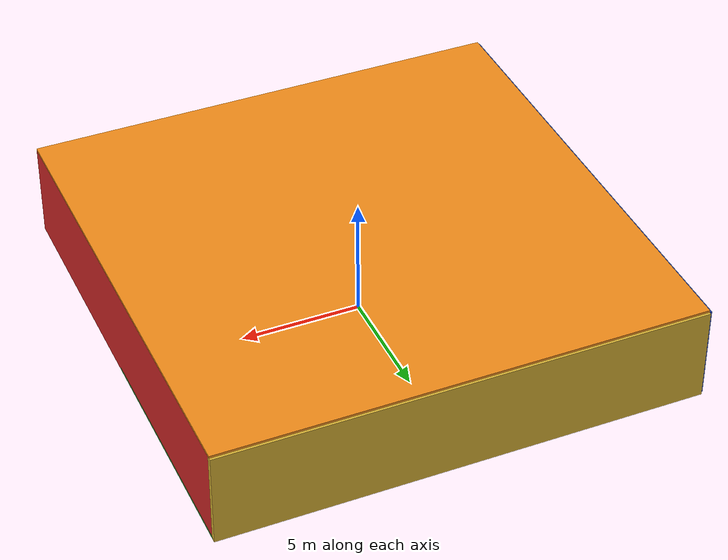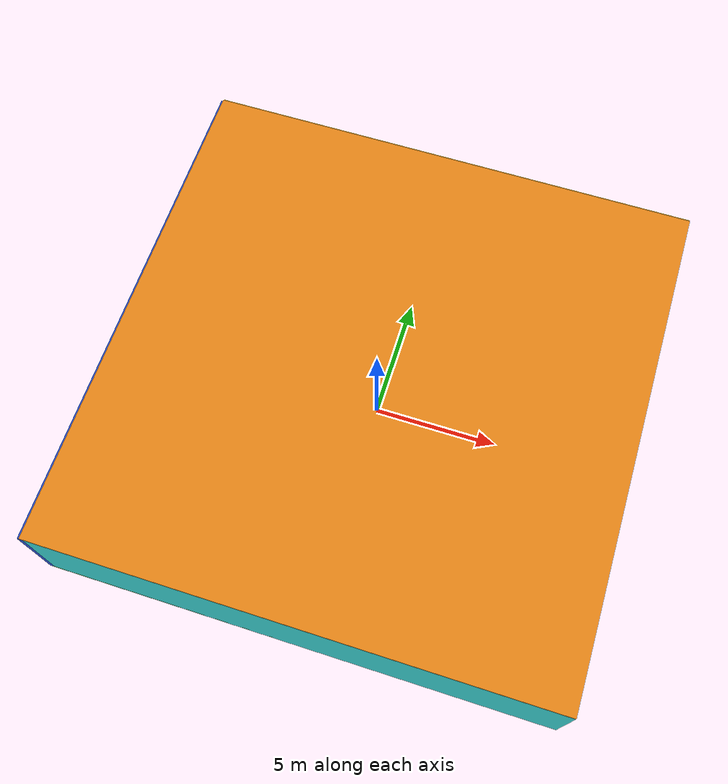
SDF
<sdf version="1.4">
 <world name="default">
  <physics type="ode">
   <max_step_size>0.001</max_step_size>
   <real_time_factor>1</real_time_factor>
   <real_time_update_rate>1000</real_time_update_rate>
   <gravity>0 0 -9.8</gravity>
  </physics>
  <scene><ambient>0.4 0.4 0.4 1</ambient><background>0.7 0.7 0.7 1</background><shadows>1</shadows></scene>
  <model name="Surrounding">
   <static>1</static>
   <link name="Ceiling">
    <collision name="Ceiling_Collision"><geometry><box><size>20 20 0.1</size></box></geometry></collision>
    <visual name="Ceiling_Visual">
     <geometry><box><size>20 20 0.1</size></box></geometry>
     <material>
      <script><uri>file://media/materials/scripts/gazebo.material</uri><name>Gazebo/Orange</name></script>
     </material>
    </visual>
    <pose>0 0 4.05 0 0 0</pose>
   </link>
   <link name="Wall_South">
    <collision name="Wall_South_Collision">
     <geometry><box><size>20 0 4</size></box></geometry>
     <pose>0 0 2 0 -0 0</pose>
    </collision>
    <visual name="Wall_South_Visual">
     <pose>0 0 2 0 -0 0</pose>
     <geometry><box><size>20 0 4</size></box></geometry>
     <material>
      <script><uri>file://media/materials/scripts/gazebo.material</uri><name>Gazebo/Turquoise</name></script>
     </material>
    </visual>
    <velocity_decay><linear>0</linear><angular>0</angular></velocity_decay>
    <pose>0 -10 0 0 -0 0</pose>
   </link>
   <link name="Wall_East">
    <collision name="Wall_21_Collision">
     <geometry><box><size>20 0 4</size></box></geometry>
     <pose>0 0 2 0 -0 0</pose>
    </collision>
    <visual name="Wall_21_Visual">
     <pose>0 0 2 0 -0 0</pose>
     <geometry><box><size>20 0 4</size></box></geometry>
     <material>
      <script><uri>file://media/materials/scripts/gazebo.material</uri><name>Gazebo/RedBright</name></script>
     </material>
    </visual>
    <velocity_decay><linear>0</linear><angular>0</angular></velocity_decay>
    <pose>10 0 0 0 -0 1.5708</pose>
   </link>
   <link name="Wall_North">
    <collision name="Wall_22_Collision">
     <geometry><box><size>20 0.2 4</size></box></geometry>
     <pose>0 0 2 0 -0 0</pose>
    </collision>
    <visual name="Wall_22_Visual">
     <pose>0 0 2 0 -0 0</pose>
     <geometry><box><size>20 0.2 4</size></box></geometry>
     <material>
      <script><uri>file://media/materials/scripts/gazebo.material</uri><name>Gazebo/Gold</name></script>
     </material>
    </visual>
    <velocity_decay><linear>0</linear><angular>0</angular></velocity_decay>
    <pose>0 10 0 0 -0 0</pose>
   </link>
   <link name="Wall_West">
    <collision name="Wall_23_Collision">
     <geometry><box><size>20 0.2 4</size></box></geometry>
     <pose>0 0 2 0 -0 0</pose>
    </collision>
    <visual name="Wall_23_Visual">
     <pose>0 0 2 0 -0 0</pose>
     <geometry><box><size>20 0.2 4</size></box></geometry>
     <material>
      <script><uri>file://media/materials/scripts/gazebo.material</uri><name>Gazebo/Blue</name></script>
     </material>
    </visual>
    <velocity_decay><linear>0</linear><angular>0</angular></velocity_decay>
    <pose>-10 0 0 0 0 -1.5708</pose>
   </link>
   <link name="Ground_link">
    <collision name="collision">
     <pose>0 0 .05 0 -0 0</pose>
     <geometry><box><size>20 20 0.1</size></box></geometry>
    </collision>
    <visual name="visual">
     <pose>0 0 .05 0 -0 0</pose>
     <geometry><box><size>20 20 0.1</size></box></geometry>
     <material>
      <script><uri>file://media/materials/scripts/gazebo.material</uri><name>Gazebo/Green</name></script>
     </material>
    </visual>
   </link>
   <static>1</static>
  </model>
  <spherical_coordinates>
   <surface_model>EARTH_WGS84</surface_model>
   <latitude_deg>0</latitude_deg>
   <longitude_deg>0</longitude_deg>
   <elevation>0</elevation>
   <heading_deg>0</heading_deg>
  </spherical_coordinates>
  <light name="lightball_0" type="diffuse">
   <diffuse>0.8 0.8 0.8 1</diffuse>
   <specular>0.2 0.2 0.2 1</specular>
   <attenuation>
    <range>100</range>
    <constant>0.7</constant>
    <linear>0.01</linear>
    <quadratic>0.001</quadratic>
   </attenuation>
   <direction>-0.5 0.1 -0.9</direction>
   <pose>-7.96460892918 7.62872080389 2.3290602367 0 0 0</pose>
  </light>
  <light name="lightball_1" type="diffuse">
   <diffuse>0.8 0.8 0.8 1</diffuse>
   <specular>0.2 0.2 0.2 1</specular>
   <attenuation>
    <range>100</range>
    <constant>0.7</constant>
    <linear>0.01</linear>
    <quadratic>0.001</quadratic>
   </attenuation>
   <direction>-0.5 0.1 -0.9</direction>
   <pose>2.71556479208 7.51996873715 3.29277295874 0 0 0</pose>
  </light>
  <light name="lightball_2" type="diffuse">
   <diffuse>0.8 0.8 0.8 1</diffuse>
   <specular>0.2 0.2 0.2 1</specular>
   <attenuation>
    <range>100</range>
    <constant>0.7</constant>
    <linear>0.01</linear>
    <quadratic>0.001</quadratic>
   </attenuation>
   <direction>-0.5 0.1 -0.9</direction>
   <pose>3.4307242924 -1.85758998061 1.33406418375 0 0 0</pose>
  </light>
  <light name="lightball_3" type="diffuse">
   <diffuse>0.8 0.8 0.8 1</diffuse>
   <specular>0.2 0.2 0.2 1</specular>
   <attenuation>
    <range>100</range>
    <constant>0.7</constant>
    <linear>0.01</linear>
    <quadratic>0.001</quadratic>
   </attenuation>
   <direction>-0.5 0.1 -0.9</direction>
   <pose>-4.58480493878 6.28911150717 0.622985051198 0 0 0</pose>
  </light>
  <include>
   <uri>model://textured_shapes</uri>
   <pose>-4.85376298061 -7.58416671863 0 0 0 2.85724189276</pose>
  </include>
  <include>
   <uri>model://construction_cone</uri>
   <pose>-4.45734771287 8.20226410286 0 0 0 2.01647957347</pose>
  </include>
  <include><uri>model://cabinet</uri><pose>1.96033363213 -6.82025597343 0 0 0 0.204776192994</pose></include>
  <include><uri>model://cabinet</uri><pose>1.55957089722 1.69747964468 0 0 0 2.41123827995</pose></include>
  <include>
   <uri>model://robocup_3Dsim_goal</uri>
   <pose>7.45774624984 0.811574867063 0 0 0 0.754163056318</pose>
  </include>
 </world>
</sdf>

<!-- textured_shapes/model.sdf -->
<sdf version="1.6">
  <model name="textured_shapes">
    <pose>0 0 0.5 0 0 0</pose>
    <link name="box">
      <pose>0 -1.5 0 0 0 0</pose>
      <collision name="collision">
        <geometry>
          <box>
            <size>1 1 1</size>
          </box>
        </geometry>
      </collision>
      <visual name="visual">
        <geometry>
          <box>
            <size>1 1 1</size>
          </box>
        </geometry>
        <material>
          <script>
            <uri>model://../model_source/models/textured_shapes/materials/scripts</uri>
            <uri>model://../model_source/models/textured_shapes/materials/textures</uri>
            <name>TexturedShape/Squares</name>
          </script>
        </material>
      </visual>
    </link>
    <link name="sphere">
      <collision name="collision">
        <geometry>
          <sphere>
            <radius>0.5</radius>
          </sphere>
        </geometry>
      </collision>
      <visual name="visual">
        <geometry>
          <sphere>
            <radius>0.5</radius>
          </sphere>
        </geometry>
        <material>
          <script>
            <uri>model://../model_source/models/textured_shapes/materials/scripts</uri>
            <uri>model://../model_source/models/textured_shapes/materials/textures</uri>
            <name>TexturedShape/Squares</name>
          </script>
        </material>
      </visual>
    </link>
    <link name="cylinder">
      <pose>0 1.5 0 0 0 0</pose>
      <collision name="collision">
        <geometry>
          <cylinder>
            <radius>0.5</radius>
            <length>1</length>
          </cylinder>
        </geometry>
      </collision>
      <visual name="visual">
        <geometry>
          <cylinder>
            <radius>0.5</radius>
            <length>1</length>
          </cylinder>
        </geometry>
        <material>
          <script>
            <uri>model://../model_source/models/textured_shapes/materials/scripts</uri>
            <uri>model://../model_source/models/textured_shapes/materials/textures</uri>
            <name>TexturedShape/Squares</name>
          </script>
        </material>
      </visual>
    </link>
  </model>
</sdf>

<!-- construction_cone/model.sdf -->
<sdf version="1.5">
  <model name="Construction Cone">
    <link name="link">
      <collision name="collision">
        <geometry>
          <mesh>
            <scale>10 10 10</scale>
            <uri>file://isr-testbed/construction_cone/meshes/construction_cone.dae</uri>
          </mesh>
        </geometry>
      </collision>
      <visual name="visual">
        <geometry>
          <mesh>
            <scale>10 10 10</scale>
            <uri>file://isr-testbed/construction_cone/meshes/construction_cone.dae</uri>
          </mesh>
        </geometry>
      </visual>
    </link>
  </model>
</sdf>

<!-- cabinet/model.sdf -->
<sdf version="1.5">
  <model name="cabinet">
    <static>true</static>
    <link name="cabinet_bottom_plate">
      <inertial>
        <pose>0 0 -1 0 0 0</pose>
        <inertia>
          <ixx>2.050000</ixx>
          <ixy>0</ixy>
          <ixz>0</ixz>
          <iyy>2.050000</iyy>
          <iyz>0</iyz>
          <izz>2.050000</izz>
        </inertia>
        <mass>25.000000</mass>
      </inertial>
      <collision name="cabinet_bottom_plate_geom">
        <pose>0 0 0.010000 0 0 0</pose>
        <geometry>
          <box>
            <size>0.450000 0.450000 0.020000</size>
          </box>
        </geometry>
      </collision>
      <visual name="cabinet_bottom_plate_geom_visual">
        <pose>0 0 0.010000 0 0 0</pose>
        <geometry>
          <box>
            <size>0.450000 0.450000 0.020000</size>
          </box>
        </geometry>
        <material>
          <script>
            <uri>model://media/materials/scripts/gazebo.material</uri>
            <name>Gazebo/Wood</name>
          </script>
        </material>
      </visual>
      <collision name="cabinet_bottom_plate_geom_cabinet_back_plate">
        <pose>0.235000 0 0.510000 0 0 0</pose>
        <geometry>
          <box>
            <size>0.020000 0.450000 1.020000</size>
          </box>
        </geometry>
      </collision>
      <visual name="cabinet_bottom_plate_geom_cabinet_back_plate_visual">
        <pose>0.235000 0 0.510000 0 0 0</pose>
        <geometry>
          <box>
            <size>0.020000 0.450000 1.020000</size>
          </box>
        </geometry>
        <material>
          <script>
            <uri>model://media/materials/scripts/gazebo.material</uri>
            <name>Gazebo/Wood</name>
          </script>
        </material>
      </visual>
      <collision name="cabinet_bottom_plate_geom_cabinet_left_plate">
        <pose>0 0.235000 0.510000 0 0 0</pose>
        <geometry>
          <box>
            <size>0.450000 0.020000 1.020000</size>
          </box>
        </geometry>
      </collision>
      <visual name="cabinet_bottom_plate_geom_cabinet_left_plate_visual">
        <pose>0 0.235000 0.510000 0 0 0</pose>
        <geometry>
          <box>
            <size>0.450000 0.020000 1.020000</size>
          </box>
        </geometry>
        <material>
          <script>
            <uri>model://media/materials/scripts/gazebo.material</uri>
            <name>Gazebo/Wood</name>
          </script>
        </material>
      </visual>
      <collision name="cabinet_bottom_plate_geom_cabinet_middle_plate">
        <pose>0 0 0.510000 0 0 0</pose>
        <geometry>
          <box>
            <size>0.450000 0.450000 0.020000</size>
          </box>
        </geometry>
      </collision>
      <visual name="cabinet_bottom_plate_geom_cabinet_middle_plate_visual">
        <pose>0 0 0.510000 0 0 0</pose>
        <geometry>
          <box>
            <size>0.450000 0.450000 0.020000</size>
          </box>
        </geometry>
        <material>
          <script>
            <uri>model://media/materials/scripts/gazebo.material</uri>
            <name>Gazebo/Wood</name>
          </script>
        </material>
      </visual>
      <collision name="cabinet_bottom_plate_geom_cabinet_right_plate">
        <pose>0 -0.235000 0.510000 0 0 0</pose>
        <geometry>
          <box>
            <size>0.450000 0.020000 1.020000</size>
          </box>
        </geometry>
      </collision>
      <visual name="cabinet_bottom_plate_geom_cabinet_right_plate_visual">
        <pose>0 -0.235000 0.510000 0 0 0</pose>
        <geometry>
          <box>
            <size>0.450000 0.020000 1.020000</size>
          </box>
        </geometry>
        <material>
          <script>
            <uri>model://media/materials/scripts/gazebo.material</uri>
            <name>Gazebo/Wood</name>
          </script>
        </material>
      </visual>
      <collision name="cabinet_bottom_plate_geom_cabinet_top_plate">
        <pose>0 0 1.010000 0 0 0</pose>
        <geometry>
          <box>
            <size>0.450000 0.450000 0.020000</size>
          </box>
        </geometry>
      </collision>
      <visual name="cabinet_bottom_plate_geom_cabinet_top_plate_visual">
        <pose>0 0 1.010000 0 0 0</pose>
        <geometry>
          <box>
            <size>0.450000 0.450000 0.020000</size>
          </box>
        </geometry>
        <material>
          <script>
            <uri>model://media/materials/scripts/gazebo.material</uri>
            <name>Gazebo/Wood</name>
          </script>
        </material>
      </visual>
    </link>
  </model>
</sdf>

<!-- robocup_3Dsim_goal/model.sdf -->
<sdf version="1.5">
  <model name="robocup_3d_goal">
    <static>true</static>
    <link name="left_post">
      <pose>0 1.05 0.45 0 0 0</pose>
      <collision name="collision">
        <geometry>
          <cylinder>
            <radius>0.05</radius>
            <length>0.9</length>
          </cylinder>
        </geometry>
      </collision>
      <visual name="visual">
        <geometry>
          <cylinder>
            <radius>0.05</radius>
            <length>0.9</length>
          </cylinder>
        </geometry>
        <material>
          <script>
            <uri>file://media/materials/scripts/gazebo.material</uri>
            <name>Gazebo/ZincYellow</name>
          </script>
        </material>
      </visual>
    </link>
    <link name="left_support_horiz_lower">
      <pose>0.30 1.05 0.01 0 0 0</pose>
      <collision name="collision">
        <geometry>
          <box>
            <size>0.50 0.02 0.02</size>
          </box>
        </geometry>
      </collision>
      <visual name="visual">
        <geometry>
          <box>
            <size>0.50 0.02 0.02</size>
          </box>
        </geometry>
        <material>
          <script>
            <uri>file://media/materials/scripts/gazebo.material</uri>
            <name>Gazebo/White</name>
          </script>
        </material>
      </visual>
    </link>
    <link name="left_support_horiz_upper">
      <pose>0.30 1.05 0.79 0 0 0</pose>
      <collision name="collision">
        <geometry>
          <box>
            <size>0.50 0.02 0.02</size>
          </box>
        </geometry>
      </collision>
      <visual name="visual">
        <geometry>
          <box>
            <size>0.50 0.02 0.02</size>
          </box>
        </geometry>
        <material>
          <script>
            <uri>file://media/materials/scripts/gazebo.material</uri>
            <name>Gazebo/White</name>
          </script>
        </material>
      </visual>
    </link>
    <link name="left_support_vertical">
      <pose>0.56 1.05 0.4 0 1.5708 0</pose>
      <collision name="collision">
        <geometry>
          <box>
            <size>0.80 0.02 0.02</size>
          </box>
        </geometry>
      </collision>
      <visual name="visual">
        <geometry>
          <box>
            <size>0.80 0.02 0.02</size>
          </box>
        </geometry>
        <material>
          <script>
            <uri>file://media/materials/scripts/gazebo.material</uri>
            <name>Gazebo/White</name>
          </script>
        </material>
      </visual>
    </link>
    <link name="right_support_horiz_lower">
      <pose>0.30 -1.05 0.01 0 0 0</pose>
      <collision name="collision">
        <geometry>
          <box>
            <size>0.50 0.02 0.02</size>
          </box>
        </geometry>
      </collision>
      <visual name="visual">
        <geometry>
          <box>
            <size>0.50 0.02 0.02</size>
          </box>
        </geometry>
        <material>
          <script>
            <uri>file://media/materials/scripts/gazebo.material</uri>
            <name>Gazebo/White</name>
          </script>
        </material>
      </visual>
    </link>
    <link name="right_support_horiz_upper">
      <pose>0.30 -1.05 0.79 0 0 0</pose>
      <collision name="collision">
        <geometry>
          <box>
            <size>0.50 0.02 0.02</size>
          </box>
        </geometry>
      </collision>
      <visual name="visual">
        <geometry>
          <box>
            <size>0.50 0.02 0.02</size>
          </box>
        </geometry>
        <material>
          <script>
            <uri>file://media/materials/scripts/gazebo.material</uri>
            <name>Gazebo/White</name>
          </script>
        </material>
      </visual>
    </link>
    <link name="right_support_vertical">
      <pose>0.56 -1.05 0.4 0 1.5708 0</pose>
      <collision name="collision">
        <geometry>
          <box>
            <size>0.80 0.02 0.02</size>
          </box>
        </geometry>
      </collision>
      <visual name="visual">
        <geometry>
          <box>
            <size>0.80 0.02 0.02</size>
          </box>
        </geometry>
        <material>
          <script>
            <uri>file://media/materials/scripts/gazebo.material</uri>
            <name>Gazebo/White</name>
          </script>
        </material>
      </visual>
    </link>
    <link name="center_support_horiz_lower">
      <pose>0.56 0 0.01 0 1.5708 0</pose>
      <collision name="collision">
        <geometry>
          <box>
            <size>0.02 2.08 0.02</size>
          </box>
        </geometry>
      </collision>
      <visual name="visual">
        <geometry>
          <box>
            <size>0.02 2.08 0.02</size>
          </box>
        </geometry>
        <material>
          <script>
            <uri>file://media/materials/scripts/gazebo.material</uri>
            <name>Gazebo/White</name>
          </script>
        </material>
      </visual>
    </link>
    <link name="center_support_horiz_upper">
      <pose>0.56 0 0.79 0 1.5708 0</pose>
      <collision name="collision">
        <geometry>
          <box>
            <size>0.02 2.08 0.02</size>
          </box>
        </geometry>
      </collision>
      <visual name="visual">
        <geometry>
          <box>
            <size>0.02 2.08 0.02</size>
          </box>
        </geometry>
        <material>
          <script>
            <uri>file://media/materials/scripts/gazebo.material</uri>
            <name>Gazebo/White</name>
          </script>
        </material>
      </visual>
    </link>
    <link name="right_post">
      <pose>0 -1.05 0.45 0 0 0</pose>
      <collision name="collision">
        <geometry>
          <cylinder>
            <radius>0.05</radius>
            <length>0.9</length>
          </cylinder>
        </geometry>
      </collision>
      <visual name="visual">
        <geometry>
          <cylinder>
            <radius>0.05</radius>
            <length>0.9</length>
          </cylinder>
        </geometry>
        <material>
          <script>
            <uri>file://media/materials/scripts/gazebo.material</uri>
            <name>Gazebo/ZincYellow</name>
          </script>
        </material>
      </visual>
    </link>
    <link name="crossbar">
      <pose>0 0 0.85 1.57 1.57 0</pose>
      <collision name="collision">
        <geometry>
          <cylinder>
            <radius>0.05</radius>
            <length>2.0</length>
          </cylinder>
        </geometry>
      </collision>
      <visual name="visual">
        <geometry>
          <cylinder>
            <radius>0.05</radius>
            <length>2.0</length>
          </cylinder>
        </geometry>
        <material>
          <script>
            <uri>file://media/materials/scripts/gazebo.material</uri>
            <name>Gazebo/ZincYellow</name>
          </script>
        </material>
      </visual>
    </link>
    <link name="center_net">
      <pose>0.56 0 0.40 0 0 0</pose>
      <collision name="collision">
        <geometry>
          <box>
            <size>0.01 2.1 0.80</size>
          </box>
        </geometry>
      </collision>
      <visual name="visual">
        <geometry>
          <box>
            <size>0.01 2.1 0.80</size>
          </box>
        </geometry>
        <material>
          <script>
            <uri>model://../model_source/models/robocup09_spl_field/materials/scripts/</uri>
            <uri>model://../model_source/models/robocup09_spl_field/materials/textures/</uri>
            <name>RoboCup/Net</name>
          </script>
        </material>
      </visual>
    </link>
    <link name="left_net">
      <pose>0.30 1.05 0.40 0 0 0</pose>
      <collision name="collision">
        <geometry>
          <box>
            <size>0.50 0.01 0.76</size>
          </box>
        </geometry>
      </collision>
      <visual name="visual">
        <geometry>
          <box>
            <size>0.50 0.01 0.76</size>
          </box>
        </geometry>
        <material>
          <script>
            <uri>model://../model_source/models/robocup09_spl_field/materials/scripts/</uri>
            <uri>model://../model_source/models/robocup09_spl_field/materials/textures/</uri>
            <name>RoboCup/Net</name>
          </script>
        </material>
      </visual>
    </link>
    <link name="right_net">
      <pose>0.30 -1.05 0.40 0 0 0</pose>
      <collision name="collision">
        <geometry>
          <box>
            <size>0.50 0.01 0.76</size>
          </box>
        </geometry>
      </collision>
      <visual name="visual">
        <geometry>
          <box>
            <size>0.50 0.01 0.76</size>
          </box>
        </geometry>
        <material>
          <script>
            <uri>model://../model_source/models/robocup09_spl_field/materials/scripts/</uri>
            <uri>model://../model_source/models/robocup09_spl_field/materials/textures/</uri>
            <name>RoboCup/Net</name>
          </script>
        </material>
      </visual>
    </link>
  </model>
</sdf>
